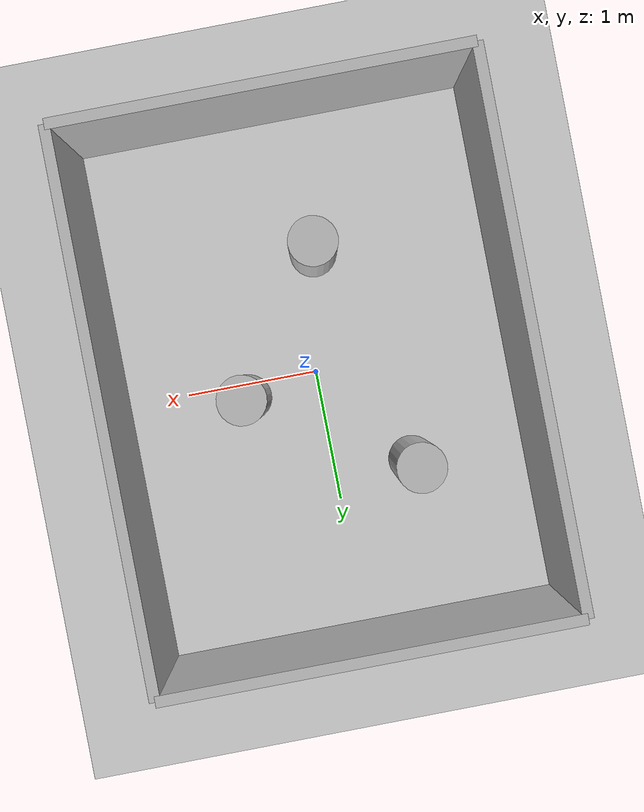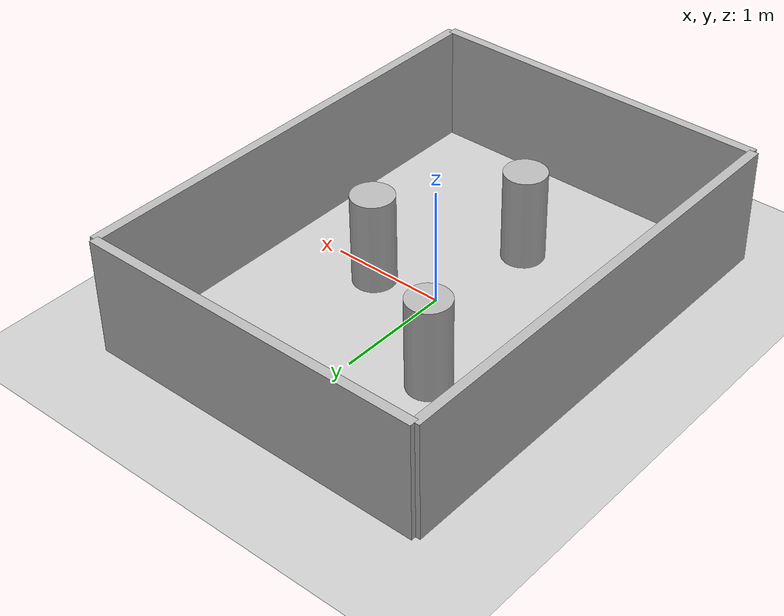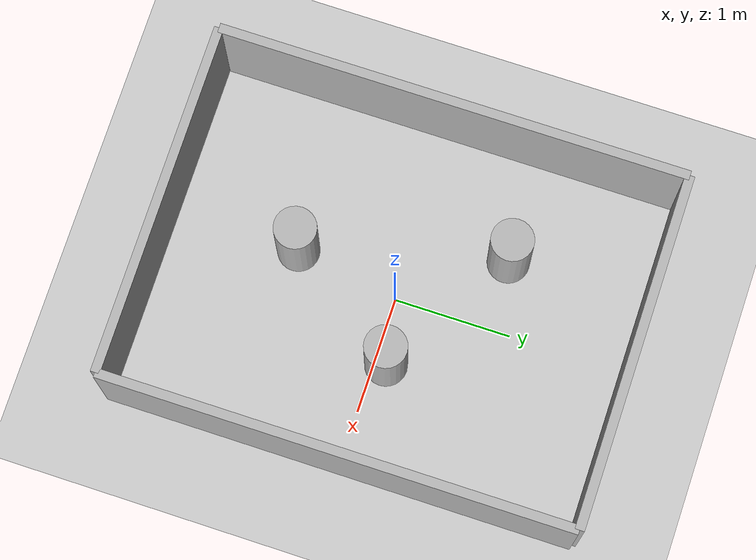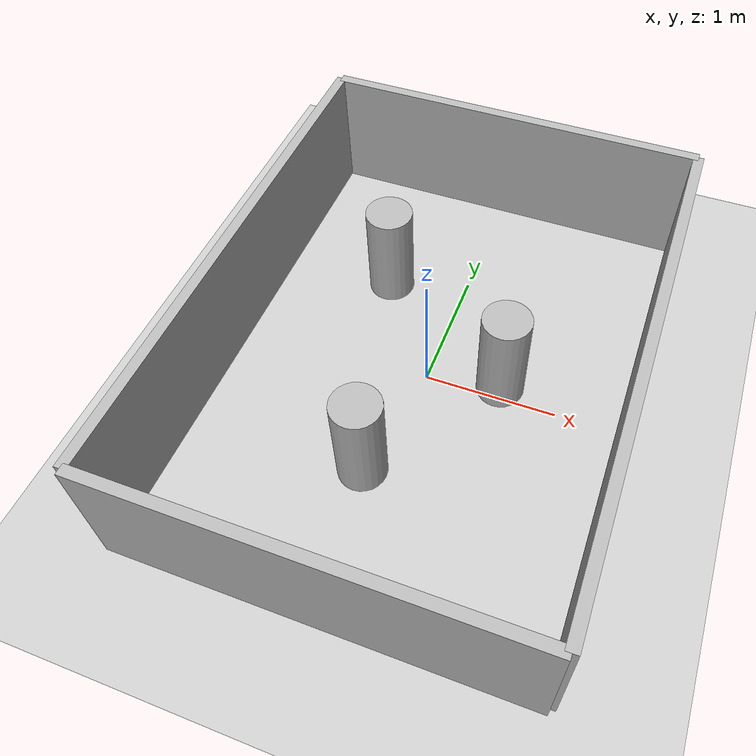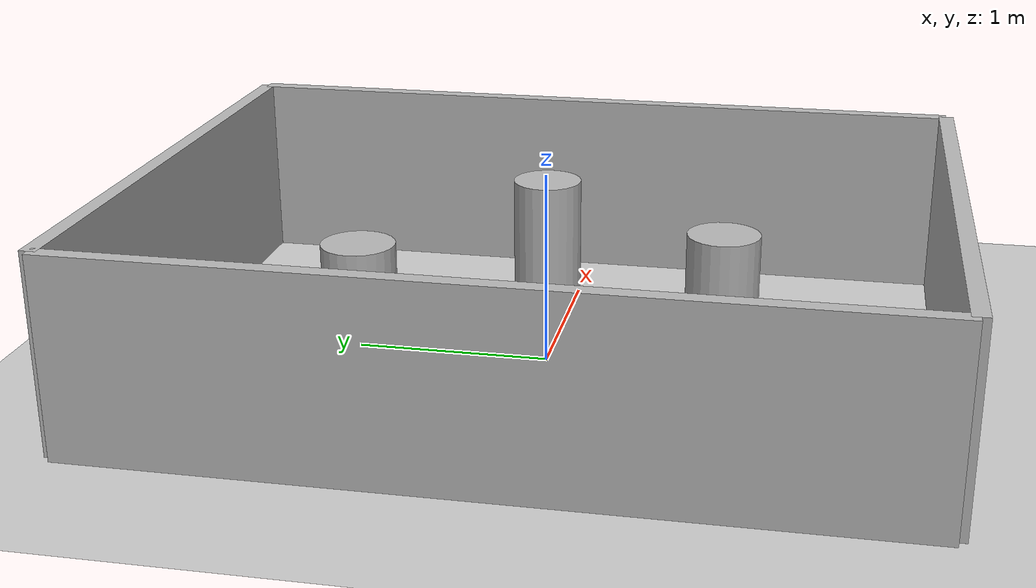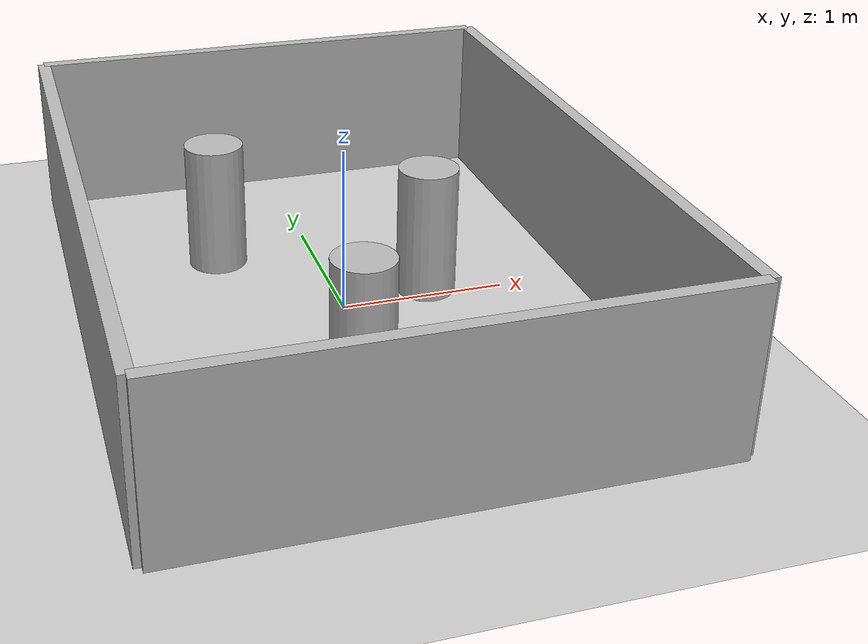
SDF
<?xml version="1.0"?>
<sdf version="1.6">
  <world name="default">
    <include><uri>model://sun</uri></include>
    <include><uri>model://ground_plane</uri></include>

    <physics type="ode">
      <real_time_update_rate>1000</real_time_update_rate>
      <max_step_size>0.001</max_step_size>
    </physics>

    <model name="north_wall">
      <static>true</static><pose>0 2 0.5 0 0 0</pose>
      <link name="link"><collision name="collision"><geometry><box><size>3 0.08 1</size></box></geometry></collision><visual name="visual"><geometry><box><size>3 0.08 1</size></box></geometry></visual></link>
    </model>
    <model name="south_wall">
      <static>true</static><pose>0 -2 0.5 0 0 0</pose>
      <link name="link"><collision name="collision"><geometry><box><size>3 0.08 1</size></box></geometry></collision><visual name="visual"><geometry><box><size>3 0.08 1</size></box></geometry></visual></link>
    </model>
    <model name="east_wall">
      <static>true</static><pose>1.5 0 0.5 0 0 0</pose>
      <link name="link"><collision name="collision"><geometry><box><size>0.08 4 1</size></box></geometry></collision><visual name="visual"><geometry><box><size>0.08 4 1</size></box></geometry></visual></link>
    </model>
    <model name="west_wall">
      <static>true</static><pose>-1.5 0 0.5 0 0 0</pose>
      <link name="link"><collision name="collision"><geometry><box><size>0.08 4 1</size></box></geometry></collision><visual name="visual"><geometry><box><size>0.08 4 1</size></box></geometry></visual></link>
    </model>

    <model name="cylinder_1">
      <static>true</static><pose>-0.6 0.8 0.4 0 0 0</pose>
      <link name="link"><collision name="collision"><geometry><cylinder><radius>0.18</radius><length>0.8</length></cylinder></geometry></collision><visual name="visual"><geometry><cylinder><radius>0.18</radius><length>0.8</length></cylinder></geometry></visual></link>
    </model>
    <model name="cylinder_2">
      <static>true</static><pose>0.55 0.1 0.4 0 0 0</pose>
      <link name="link"><collision name="collision"><geometry><cylinder><radius>0.18</radius><length>0.8</length></cylinder></geometry></collision><visual name="visual"><geometry><cylinder><radius>0.18</radius><length>0.8</length></cylinder></geometry></visual></link>
    </model>
    <model name="cylinder_3">
      <static>true</static><pose>-0.15 -0.9 0.4 0 0 0</pose>
      <link name="link"><collision name="collision"><geometry><cylinder><radius>0.18</radius><length>0.8</length></cylinder></geometry></collision><visual name="visual"><geometry><cylinder><radius>0.18</radius><length>0.8</length></cylinder></geometry></visual></link>
    </model>
  </world>
</sdf>
